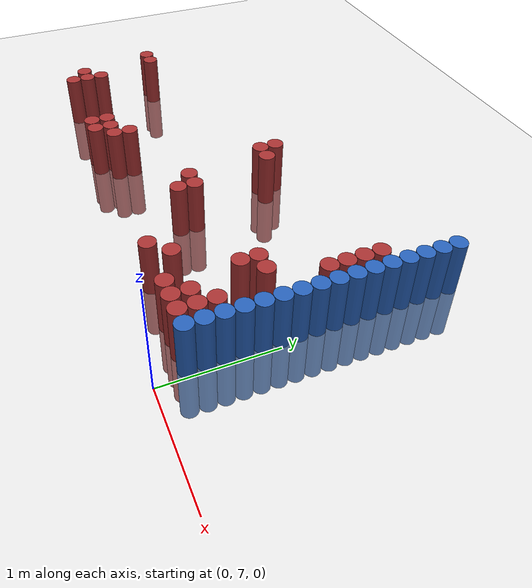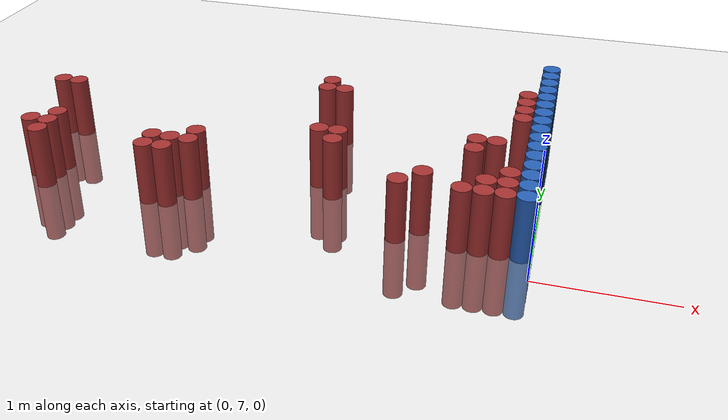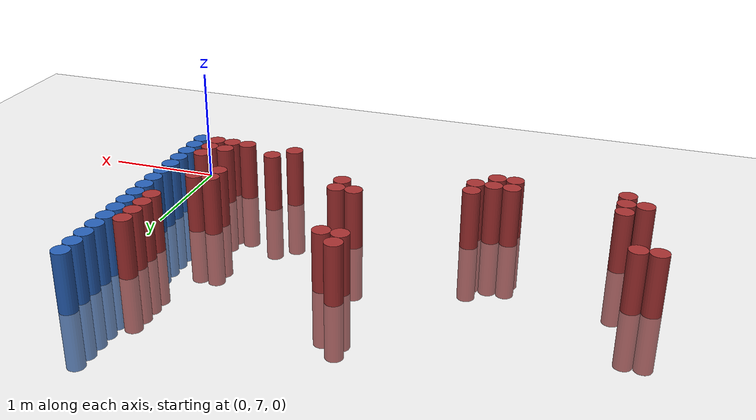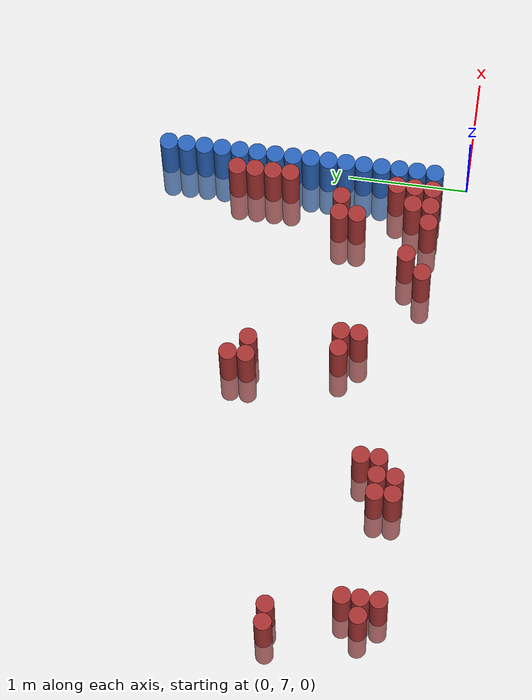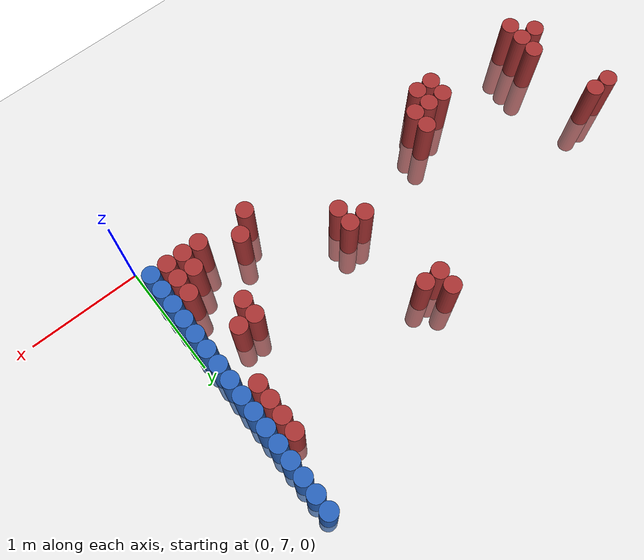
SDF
<sdf version="1.6">
 <world name="default">
  <model name="ground_plane">
   <static>1</static>
   <link name="link">
    <collision name="collision">
     <geometry><plane><normal>0 0 1</normal><size>100 100</size></plane></geometry>
     <surface><friction><ode><mu>100</mu><mu2>50</mu2></ode></friction></surface>
    </collision>
    <visual name="visual">
     <cast_shadows>0</cast_shadows>
     <geometry><plane><normal>0 0 1</normal><size>100 100</size></plane></geometry>
     <material>
      <script><uri>file://media/materials/scripts/gazebo.material</uri><name>Gazebo/Grey</name></script>
     </material>
    </visual>
   </link>
  </model>
  <model name="unit_cylinder_146">
   <static>1</static>
   <pose>-4.125000 8.175000 0.000000 0.000000 0.000000 0.000000</pose>
   <link name="link">
    <inertial>
     <mass>1</mass>
     <inertia><ixx>0.145833</ixx><ixy>0</ixy><ixz>0</ixz><iyy>0.145833</iyy><iyz>0</iyz><izz>0.125</izz></inertia>
    </inertial>
    <collision name="collision">
     <geometry><cylinder><radius>0.075000</radius><length>1</length></cylinder></geometry>
    </collision>
    <visual name="visual">
     <geometry><cylinder><radius>0.075000</radius><length>1</length></cylinder></geometry>
     <material>
      <ambient>0.648000 0.192000 0.192000 1</ambient>
      <diffuse>0.648000 0.192000 0.192000 1</diffuse>
     </material>
     <material>
      <script><name>Gazebo/Grey</name><uri>file://media/materials/scripts/gazebo.material</uri></script>
     </material>
    </visual>
   </link>
  </model>
  <model name="unit_cylinder_151">
   <static>1</static>
   <pose>-3.975000 7.425000 0.000000 0.000000 0.000000 0.000000</pose>
   <link name="link">
    <inertial>
     <mass>1</mass>
     <inertia><ixx>0.145833</ixx><ixy>0</ixy><ixz>0</ixz><iyy>0.145833</iyy><iyz>0</iyz><izz>0.125</izz></inertia>
    </inertial>
    <collision name="collision">
     <geometry><cylinder><radius>0.075000</radius><length>1</length></cylinder></geometry>
    </collision>
    <visual name="visual">
     <geometry><cylinder><radius>0.075000</radius><length>1</length></cylinder></geometry>
     <material>
      <ambient>0.648000 0.192000 0.192000 1</ambient>
      <diffuse>0.648000 0.192000 0.192000 1</diffuse>
     </material>
     <material>
      <script><name>Gazebo/Grey</name><uri>file://media/materials/scripts/gazebo.material</uri></script>
     </material>
    </visual>
   </link>
  </model>
  <model name="unit_cylinder_152">
   <static>1</static>
   <pose>-3.975000 8.175000 0.000000 0.000000 0.000000 0.000000</pose>
   <link name="link">
    <inertial>
     <mass>1</mass>
     <inertia><ixx>0.145833</ixx><ixy>0</ixy><ixz>0</ixz><iyy>0.145833</iyy><iyz>0</iyz><izz>0.125</izz></inertia>
    </inertial>
    <collision name="collision">
     <geometry><cylinder><radius>0.075000</radius><length>1</length></cylinder></geometry>
    </collision>
    <visual name="visual">
     <geometry><cylinder><radius>0.075000</radius><length>1</length></cylinder></geometry>
     <material>
      <ambient>0.648000 0.192000 0.192000 1</ambient>
      <diffuse>0.648000 0.192000 0.192000 1</diffuse>
     </material>
     <material>
      <script><name>Gazebo/Grey</name><uri>file://media/materials/scripts/gazebo.material</uri></script>
     </material>
    </visual>
   </link>
  </model>
  <model name="unit_cylinder_154">
   <static>1</static>
   <pose>-3.825000 7.275000 0.000000 0.000000 0.000000 0.000000</pose>
   <link name="link">
    <inertial>
     <mass>1</mass>
     <inertia><ixx>0.145833</ixx><ixy>0</ixy><ixz>0</ixz><iyy>0.145833</iyy><iyz>0</iyz><izz>0.125</izz></inertia>
    </inertial>
    <collision name="collision">
     <geometry><cylinder><radius>0.075000</radius><length>1</length></cylinder></geometry>
    </collision>
    <visual name="visual">
     <geometry><cylinder><radius>0.075000</radius><length>1</length></cylinder></geometry>
     <material>
      <ambient>0.648000 0.192000 0.192000 1</ambient>
      <diffuse>0.648000 0.192000 0.192000 1</diffuse>
     </material>
     <material>
      <script><name>Gazebo/Grey</name><uri>file://media/materials/scripts/gazebo.material</uri></script>
     </material>
    </visual>
   </link>
  </model>
  <model name="unit_cylinder_155">
   <static>1</static>
   <pose>-3.825000 7.425000 0.000000 0.000000 0.000000 0.000000</pose>
   <link name="link">
    <inertial>
     <mass>1</mass>
     <inertia><ixx>0.145833</ixx><ixy>0</ixy><ixz>0</ixz><iyy>0.145833</iyy><iyz>0</iyz><izz>0.125</izz></inertia>
    </inertial>
    <collision name="collision">
     <geometry><cylinder><radius>0.075000</radius><length>1</length></cylinder></geometry>
    </collision>
    <visual name="visual">
     <geometry><cylinder><radius>0.075000</radius><length>1</length></cylinder></geometry>
     <material>
      <ambient>0.648000 0.192000 0.192000 1</ambient>
      <diffuse>0.648000 0.192000 0.192000 1</diffuse>
     </material>
     <material>
      <script><name>Gazebo/Grey</name><uri>file://media/materials/scripts/gazebo.material</uri></script>
     </material>
    </visual>
   </link>
  </model>
  <model name="unit_cylinder_156">
   <static>1</static>
   <pose>-3.825000 7.575000 0.000000 0.000000 0.000000 0.000000</pose>
   <link name="link">
    <inertial>
     <mass>1</mass>
     <inertia><ixx>0.145833</ixx><ixy>0</ixy><ixz>0</ixz><iyy>0.145833</iyy><iyz>0</iyz><izz>0.125</izz></inertia>
    </inertial>
    <collision name="collision">
     <geometry><cylinder><radius>0.075000</radius><length>1</length></cylinder></geometry>
    </collision>
    <visual name="visual">
     <geometry><cylinder><radius>0.075000</radius><length>1</length></cylinder></geometry>
     <material>
      <ambient>0.648000 0.192000 0.192000 1</ambient>
      <diffuse>0.648000 0.192000 0.192000 1</diffuse>
     </material>
     <material>
      <script><name>Gazebo/Grey</name><uri>file://media/materials/scripts/gazebo.material</uri></script>
     </material>
    </visual>
   </link>
  </model>
  <model name="unit_cylinder_157">
   <static>1</static>
   <pose>-2.925000 7.275000 0.000000 0.000000 0.000000 0.000000</pose>
   <link name="link">
    <inertial>
     <mass>1</mass>
     <inertia><ixx>0.145833</ixx><ixy>0</ixy><ixz>0</ixz><iyy>0.145833</iyy><iyz>0</iyz><izz>0.125</izz></inertia>
    </inertial>
    <collision name="collision">
     <geometry><cylinder><radius>0.075000</radius><length>1</length></cylinder></geometry>
    </collision>
    <visual name="visual">
     <geometry><cylinder><radius>0.075000</radius><length>1</length></cylinder></geometry>
     <material>
      <ambient>0.648000 0.192000 0.192000 1</ambient>
      <diffuse>0.648000 0.192000 0.192000 1</diffuse>
     </material>
     <material>
      <script><name>Gazebo/Grey</name><uri>file://media/materials/scripts/gazebo.material</uri></script>
     </material>
    </visual>
   </link>
  </model>
  <model name="unit_cylinder_158">
   <static>1</static>
   <pose>-2.925000 7.425000 0.000000 0.000000 0.000000 0.000000</pose>
   <link name="link">
    <inertial>
     <mass>1</mass>
     <inertia><ixx>0.145833</ixx><ixy>0</ixy><ixz>0</ixz><iyy>0.145833</iyy><iyz>0</iyz><izz>0.125</izz></inertia>
    </inertial>
    <collision name="collision">
     <geometry><cylinder><radius>0.075000</radius><length>1</length></cylinder></geometry>
    </collision>
    <visual name="visual">
     <geometry><cylinder><radius>0.075000</radius><length>1</length></cylinder></geometry>
     <material>
      <ambient>0.648000 0.192000 0.192000 1</ambient>
      <diffuse>0.648000 0.192000 0.192000 1</diffuse>
     </material>
     <material>
      <script><name>Gazebo/Grey</name><uri>file://media/materials/scripts/gazebo.material</uri></script>
     </material>
    </visual>
   </link>
  </model>
  <model name="unit_cylinder_164">
   <static>1</static>
   <pose>-2.775000 7.275000 0.000000 0.000000 0.000000 0.000000</pose>
   <link name="link">
    <inertial>
     <mass>1</mass>
     <inertia><ixx>0.145833</ixx><ixy>0</ixy><ixz>0</ixz><iyy>0.145833</iyy><iyz>0</iyz><izz>0.125</izz></inertia>
    </inertial>
    <collision name="collision">
     <geometry><cylinder><radius>0.075000</radius><length>1</length></cylinder></geometry>
    </collision>
    <visual name="visual">
     <geometry><cylinder><radius>0.075000</radius><length>1</length></cylinder></geometry>
     <material>
      <ambient>0.648000 0.192000 0.192000 1</ambient>
      <diffuse>0.648000 0.192000 0.192000 1</diffuse>
     </material>
     <material>
      <script><name>Gazebo/Grey</name><uri>file://media/materials/scripts/gazebo.material</uri></script>
     </material>
    </visual>
   </link>
  </model>
  <model name="unit_cylinder_165">
   <static>1</static>
   <pose>-2.775000 7.425000 0.000000 0.000000 0.000000 0.000000</pose>
   <link name="link">
    <inertial>
     <mass>1</mass>
     <inertia><ixx>0.145833</ixx><ixy>0</ixy><ixz>0</ixz><iyy>0.145833</iyy><iyz>0</iyz><izz>0.125</izz></inertia>
    </inertial>
    <collision name="collision">
     <geometry><cylinder><radius>0.075000</radius><length>1</length></cylinder></geometry>
    </collision>
    <visual name="visual">
     <geometry><cylinder><radius>0.075000</radius><length>1</length></cylinder></geometry>
     <material>
      <ambient>0.648000 0.192000 0.192000 1</ambient>
      <diffuse>0.648000 0.192000 0.192000 1</diffuse>
     </material>
     <material>
      <script><name>Gazebo/Grey</name><uri>file://media/materials/scripts/gazebo.material</uri></script>
     </material>
    </visual>
   </link>
  </model>
  <model name="unit_cylinder_170">
   <static>1</static>
   <pose>-2.625000 7.425000 0.000000 0.000000 0.000000 0.000000</pose>
   <link name="link">
    <inertial>
     <mass>1</mass>
     <inertia><ixx>0.145833</ixx><ixy>0</ixy><ixz>0</ixz><iyy>0.145833</iyy><iyz>0</iyz><izz>0.125</izz></inertia>
    </inertial>
    <collision name="collision">
     <geometry><cylinder><radius>0.075000</radius><length>1</length></cylinder></geometry>
    </collision>
    <visual name="visual">
     <geometry><cylinder><radius>0.075000</radius><length>1</length></cylinder></geometry>
     <material>
      <ambient>0.648000 0.192000 0.192000 1</ambient>
      <diffuse>0.648000 0.192000 0.192000 1</diffuse>
     </material>
     <material>
      <script><name>Gazebo/Grey</name><uri>file://media/materials/scripts/gazebo.material</uri></script>
     </material>
    </visual>
   </link>
  </model>
  <model name="unit_cylinder_171">
   <static>1</static>
   <pose>-2.625000 7.575000 0.000000 0.000000 0.000000 0.000000</pose>
   <link name="link">
    <inertial>
     <mass>1</mass>
     <inertia><ixx>0.145833</ixx><ixy>0</ixy><ixz>0</ixz><iyy>0.145833</iyy><iyz>0</iyz><izz>0.125</izz></inertia>
    </inertial>
    <collision name="collision">
     <geometry><cylinder><radius>0.075000</radius><length>1</length></cylinder></geometry>
    </collision>
    <visual name="visual">
     <geometry><cylinder><radius>0.075000</radius><length>1</length></cylinder></geometry>
     <material>
      <ambient>0.648000 0.192000 0.192000 1</ambient>
      <diffuse>0.648000 0.192000 0.192000 1</diffuse>
     </material>
     <material>
      <script><name>Gazebo/Grey</name><uri>file://media/materials/scripts/gazebo.material</uri></script>
     </material>
    </visual>
   </link>
  </model>
  <model name="unit_cylinder_175">
   <static>1</static>
   <pose>-1.875000 8.625000 0.000000 0.000000 0.000000 0.000000</pose>
   <link name="link">
    <inertial>
     <mass>1</mass>
     <inertia><ixx>0.145833</ixx><ixy>0</ixy><ixz>0</ixz><iyy>0.145833</iyy><iyz>0</iyz><izz>0.125</izz></inertia>
    </inertial>
    <collision name="collision">
     <geometry><cylinder><radius>0.075000</radius><length>1</length></cylinder></geometry>
    </collision>
    <visual name="visual">
     <geometry><cylinder><radius>0.075000</radius><length>1</length></cylinder></geometry>
     <material>
      <ambient>0.648000 0.192000 0.192000 1</ambient>
      <diffuse>0.648000 0.192000 0.192000 1</diffuse>
     </material>
     <material>
      <script><name>Gazebo/Grey</name><uri>file://media/materials/scripts/gazebo.material</uri></script>
     </material>
    </visual>
   </link>
  </model>
  <model name="unit_cylinder_176">
   <static>1</static>
   <pose>-1.875000 8.775000 0.000000 0.000000 0.000000 0.000000</pose>
   <link name="link">
    <inertial>
     <mass>1</mass>
     <inertia><ixx>0.145833</ixx><ixy>0</ixy><ixz>0</ixz><iyy>0.145833</iyy><iyz>0</iyz><izz>0.125</izz></inertia>
    </inertial>
    <collision name="collision">
     <geometry><cylinder><radius>0.075000</radius><length>1</length></cylinder></geometry>
    </collision>
    <visual name="visual">
     <geometry><cylinder><radius>0.075000</radius><length>1</length></cylinder></geometry>
     <material>
      <ambient>0.648000 0.192000 0.192000 1</ambient>
      <diffuse>0.648000 0.192000 0.192000 1</diffuse>
     </material>
     <material>
      <script><name>Gazebo/Grey</name><uri>file://media/materials/scripts/gazebo.material</uri></script>
     </material>
    </visual>
   </link>
  </model>
  <model name="unit_cylinder_179">
   <static>1</static>
   <pose>-1.725000 7.875000 0.000000 0.000000 0.000000 0.000000</pose>
   <link name="link">
    <inertial>
     <mass>1</mass>
     <inertia><ixx>0.145833</ixx><ixy>0</ixy><ixz>0</ixz><iyy>0.145833</iyy><iyz>0</iyz><izz>0.125</izz></inertia>
    </inertial>
    <collision name="collision">
     <geometry><cylinder><radius>0.075000</radius><length>1</length></cylinder></geometry>
    </collision>
    <visual name="visual">
     <geometry><cylinder><radius>0.075000</radius><length>1</length></cylinder></geometry>
     <material>
      <ambient>0.648000 0.192000 0.192000 1</ambient>
      <diffuse>0.648000 0.192000 0.192000 1</diffuse>
     </material>
     <material>
      <script><name>Gazebo/Grey</name><uri>file://media/materials/scripts/gazebo.material</uri></script>
     </material>
    </visual>
   </link>
  </model>
  <model name="unit_cylinder_180">
   <static>1</static>
   <pose>-1.725000 8.625000 0.000000 0.000000 0.000000 0.000000</pose>
   <link name="link">
    <inertial>
     <mass>1</mass>
     <inertia><ixx>0.145833</ixx><ixy>0</ixy><ixz>0</ixz><iyy>0.145833</iyy><iyz>0</iyz><izz>0.125</izz></inertia>
    </inertial>
    <collision name="collision">
     <geometry><cylinder><radius>0.075000</radius><length>1</length></cylinder></geometry>
    </collision>
    <visual name="visual">
     <geometry><cylinder><radius>0.075000</radius><length>1</length></cylinder></geometry>
     <material>
      <ambient>0.648000 0.192000 0.192000 1</ambient>
      <diffuse>0.648000 0.192000 0.192000 1</diffuse>
     </material>
     <material>
      <script><name>Gazebo/Grey</name><uri>file://media/materials/scripts/gazebo.material</uri></script>
     </material>
    </visual>
   </link>
  </model>
  <model name="unit_cylinder_183">
   <static>1</static>
   <pose>-1.575000 7.725000 0.000000 0.000000 0.000000 0.000000</pose>
   <link name="link">
    <inertial>
     <mass>1</mass>
     <inertia><ixx>0.145833</ixx><ixy>0</ixy><ixz>0</ixz><iyy>0.145833</iyy><iyz>0</iyz><izz>0.125</izz></inertia>
    </inertial>
    <collision name="collision">
     <geometry><cylinder><radius>0.075000</radius><length>1</length></cylinder></geometry>
    </collision>
    <visual name="visual">
     <geometry><cylinder><radius>0.075000</radius><length>1</length></cylinder></geometry>
     <material>
      <ambient>0.648000 0.192000 0.192000 1</ambient>
      <diffuse>0.648000 0.192000 0.192000 1</diffuse>
     </material>
     <material>
      <script><name>Gazebo/Grey</name><uri>file://media/materials/scripts/gazebo.material</uri></script>
     </material>
    </visual>
   </link>
  </model>
  <model name="unit_cylinder_184">
   <static>1</static>
   <pose>-1.575000 7.875000 0.000000 0.000000 0.000000 0.000000</pose>
   <link name="link">
    <inertial>
     <mass>1</mass>
     <inertia><ixx>0.145833</ixx><ixy>0</ixy><ixz>0</ixz><iyy>0.145833</iyy><iyz>0</iyz><izz>0.125</izz></inertia>
    </inertial>
    <collision name="collision">
     <geometry><cylinder><radius>0.075000</radius><length>1</length></cylinder></geometry>
    </collision>
    <visual name="visual">
     <geometry><cylinder><radius>0.075000</radius><length>1</length></cylinder></geometry>
     <material>
      <ambient>0.648000 0.192000 0.192000 1</ambient>
      <diffuse>0.648000 0.192000 0.192000 1</diffuse>
     </material>
     <material>
      <script><name>Gazebo/Grey</name><uri>file://media/materials/scripts/gazebo.material</uri></script>
     </material>
    </visual>
   </link>
  </model>
  <model name="unit_cylinder_191">
   <static>1</static>
   <pose>-0.975000 7.275000 0.000000 0.000000 0.000000 0.000000</pose>
   <link name="link">
    <inertial>
     <mass>1</mass>
     <inertia><ixx>0.145833</ixx><ixy>0</ixy><ixz>0</ixz><iyy>0.145833</iyy><iyz>0</iyz><izz>0.125</izz></inertia>
    </inertial>
    <collision name="collision">
     <geometry><cylinder><radius>0.075000</radius><length>1</length></cylinder></geometry>
    </collision>
    <visual name="visual">
     <geometry><cylinder><radius>0.075000</radius><length>1</length></cylinder></geometry>
     <material>
      <ambient>0.648000 0.192000 0.192000 1</ambient>
      <diffuse>0.648000 0.192000 0.192000 1</diffuse>
     </material>
     <material>
      <script><name>Gazebo/Grey</name><uri>file://media/materials/scripts/gazebo.material</uri></script>
     </material>
    </visual>
   </link>
  </model>
  <model name="unit_cylinder_194">
   <static>1</static>
   <pose>-0.825000 7.425000 0.000000 0.000000 0.000000 0.000000</pose>
   <link name="link">
    <inertial>
     <mass>1</mass>
     <inertia><ixx>0.145833</ixx><ixy>0</ixy><ixz>0</ixz><iyy>0.145833</iyy><iyz>0</iyz><izz>0.125</izz></inertia>
    </inertial>
    <collision name="collision">
     <geometry><cylinder><radius>0.075000</radius><length>1</length></cylinder></geometry>
    </collision>
    <visual name="visual">
     <geometry><cylinder><radius>0.075000</radius><length>1</length></cylinder></geometry>
     <material>
      <ambient>0.648000 0.192000 0.192000 1</ambient>
      <diffuse>0.648000 0.192000 0.192000 1</diffuse>
     </material>
     <material>
      <script><name>Gazebo/Grey</name><uri>file://media/materials/scripts/gazebo.material</uri></script>
     </material>
    </visual>
   </link>
  </model>
  <model name="unit_cylinder_195">
   <static>1</static>
   <pose>-0.525000 7.275000 0.000000 0.000000 0.000000 0.000000</pose>
   <link name="link">
    <inertial>
     <mass>1</mass>
     <inertia><ixx>0.145833</ixx><ixy>0</ixy><ixz>0</ixz><iyy>0.145833</iyy><iyz>0</iyz><izz>0.125</izz></inertia>
    </inertial>
    <collision name="collision">
     <geometry><cylinder><radius>0.075000</radius><length>1</length></cylinder></geometry>
    </collision>
    <visual name="visual">
     <geometry><cylinder><radius>0.075000</radius><length>1</length></cylinder></geometry>
     <material>
      <ambient>0.648000 0.192000 0.192000 1</ambient>
      <diffuse>0.648000 0.192000 0.192000 1</diffuse>
     </material>
     <material>
      <script><name>Gazebo/Grey</name><uri>file://media/materials/scripts/gazebo.material</uri></script>
     </material>
    </visual>
   </link>
  </model>
  <model name="unit_cylinder_196">
   <static>1</static>
   <pose>-0.525000 7.875000 0.000000 0.000000 0.000000 0.000000</pose>
   <link name="link">
    <inertial>
     <mass>1</mass>
     <inertia><ixx>0.145833</ixx><ixy>0</ixy><ixz>0</ixz><iyy>0.145833</iyy><iyz>0</iyz><izz>0.125</izz></inertia>
    </inertial>
    <collision name="collision">
     <geometry><cylinder><radius>0.075000</radius><length>1</length></cylinder></geometry>
    </collision>
    <visual name="visual">
     <geometry><cylinder><radius>0.075000</radius><length>1</length></cylinder></geometry>
     <material>
      <ambient>0.648000 0.192000 0.192000 1</ambient>
      <diffuse>0.648000 0.192000 0.192000 1</diffuse>
     </material>
     <material>
      <script><name>Gazebo/Grey</name><uri>file://media/materials/scripts/gazebo.material</uri></script>
     </material>
    </visual>
   </link>
  </model>
  <model name="unit_cylinder_197">
   <static>1</static>
   <pose>-0.525000 8.025000 0.000000 0.000000 0.000000 0.000000</pose>
   <link name="link">
    <inertial>
     <mass>1</mass>
     <inertia><ixx>0.145833</ixx><ixy>0</ixy><ixz>0</ixz><iyy>0.145833</iyy><iyz>0</iyz><izz>0.125</izz></inertia>
    </inertial>
    <collision name="collision">
     <geometry><cylinder><radius>0.075000</radius><length>1</length></cylinder></geometry>
    </collision>
    <visual name="visual">
     <geometry><cylinder><radius>0.075000</radius><length>1</length></cylinder></geometry>
     <material>
      <ambient>0.648000 0.192000 0.192000 1</ambient>
      <diffuse>0.648000 0.192000 0.192000 1</diffuse>
     </material>
     <material>
      <script><name>Gazebo/Grey</name><uri>file://media/materials/scripts/gazebo.material</uri></script>
     </material>
    </visual>
   </link>
  </model>
  <model name="unit_cylinder_199">
   <static>1</static>
   <pose>-0.375000 7.275000 0.000000 0.000000 0.000000 0.000000</pose>
   <link name="link">
    <inertial>
     <mass>1</mass>
     <inertia><ixx>0.145833</ixx><ixy>0</ixy><ixz>0</ixz><iyy>0.145833</iyy><iyz>0</iyz><izz>0.125</izz></inertia>
    </inertial>
    <collision name="collision">
     <geometry><cylinder><radius>0.075000</radius><length>1</length></cylinder></geometry>
    </collision>
    <visual name="visual">
     <geometry><cylinder><radius>0.075000</radius><length>1</length></cylinder></geometry>
     <material>
      <ambient>0.648000 0.192000 0.192000 1</ambient>
      <diffuse>0.648000 0.192000 0.192000 1</diffuse>
     </material>
     <material>
      <script><name>Gazebo/Grey</name><uri>file://media/materials/scripts/gazebo.material</uri></script>
     </material>
    </visual>
   </link>
  </model>
  <model name="unit_cylinder_200">
   <static>1</static>
   <pose>-0.375000 7.425000 0.000000 0.000000 0.000000 0.000000</pose>
   <link name="link">
    <inertial>
     <mass>1</mass>
     <inertia><ixx>0.145833</ixx><ixy>0</ixy><ixz>0</ixz><iyy>0.145833</iyy><iyz>0</iyz><izz>0.125</izz></inertia>
    </inertial>
    <collision name="collision">
     <geometry><cylinder><radius>0.075000</radius><length>1</length></cylinder></geometry>
    </collision>
    <visual name="visual">
     <geometry><cylinder><radius>0.075000</radius><length>1</length></cylinder></geometry>
     <material>
      <ambient>0.648000 0.192000 0.192000 1</ambient>
      <diffuse>0.648000 0.192000 0.192000 1</diffuse>
     </material>
     <material>
      <script><name>Gazebo/Grey</name><uri>file://media/materials/scripts/gazebo.material</uri></script>
     </material>
    </visual>
   </link>
  </model>
  <model name="unit_cylinder_201">
   <static>1</static>
   <pose>-0.375000 8.025000 0.000000 0.000000 0.000000 0.000000</pose>
   <link name="link">
    <inertial>
     <mass>1</mass>
     <inertia><ixx>0.145833</ixx><ixy>0</ixy><ixz>0</ixz><iyy>0.145833</iyy><iyz>0</iyz><izz>0.125</izz></inertia>
    </inertial>
    <collision name="collision">
     <geometry><cylinder><radius>0.075000</radius><length>1</length></cylinder></geometry>
    </collision>
    <visual name="visual">
     <geometry><cylinder><radius>0.075000</radius><length>1</length></cylinder></geometry>
     <material>
      <ambient>0.648000 0.192000 0.192000 1</ambient>
      <diffuse>0.648000 0.192000 0.192000 1</diffuse>
     </material>
     <material>
      <script><name>Gazebo/Grey</name><uri>file://media/materials/scripts/gazebo.material</uri></script>
     </material>
    </visual>
   </link>
  </model>
  <model name="unit_cylinder_208">
   <static>1</static>
   <pose>-0.225000 7.275000 0.000000 0.000000 0.000000 0.000000</pose>
   <link name="link">
    <inertial>
     <mass>1</mass>
     <inertia><ixx>0.145833</ixx><ixy>0</ixy><ixz>0</ixz><iyy>0.145833</iyy><iyz>0</iyz><izz>0.125</izz></inertia>
    </inertial>
    <collision name="collision">
     <geometry><cylinder><radius>0.075000</radius><length>1</length></cylinder></geometry>
    </collision>
    <visual name="visual">
     <geometry><cylinder><radius>0.075000</radius><length>1</length></cylinder></geometry>
     <material>
      <ambient>0.648000 0.192000 0.192000 1</ambient>
      <diffuse>0.648000 0.192000 0.192000 1</diffuse>
     </material>
     <material>
      <script><name>Gazebo/Grey</name><uri>file://media/materials/scripts/gazebo.material</uri></script>
     </material>
    </visual>
   </link>
  </model>
  <model name="unit_cylinder_209">
   <static>1</static>
   <pose>-0.225000 7.425000 0.000000 0.000000 0.000000 0.000000</pose>
   <link name="link">
    <inertial>
     <mass>1</mass>
     <inertia><ixx>0.145833</ixx><ixy>0</ixy><ixz>0</ixz><iyy>0.145833</iyy><iyz>0</iyz><izz>0.125</izz></inertia>
    </inertial>
    <collision name="collision">
     <geometry><cylinder><radius>0.075000</radius><length>1</length></cylinder></geometry>
    </collision>
    <visual name="visual">
     <geometry><cylinder><radius>0.075000</radius><length>1</length></cylinder></geometry>
     <material>
      <ambient>0.648000 0.192000 0.192000 1</ambient>
      <diffuse>0.648000 0.192000 0.192000 1</diffuse>
     </material>
     <material>
      <script><name>Gazebo/Grey</name><uri>file://media/materials/scripts/gazebo.material</uri></script>
     </material>
    </visual>
   </link>
  </model>
  <model name="unit_cylinder_210">
   <static>1</static>
   <pose>-0.225000 7.575000 0.000000 0.000000 0.000000 0.000000</pose>
   <link name="link">
    <inertial>
     <mass>1</mass>
     <inertia><ixx>0.145833</ixx><ixy>0</ixy><ixz>0</ixz><iyy>0.145833</iyy><iyz>0</iyz><izz>0.125</izz></inertia>
    </inertial>
    <collision name="collision">
     <geometry><cylinder><radius>0.075000</radius><length>1</length></cylinder></geometry>
    </collision>
    <visual name="visual">
     <geometry><cylinder><radius>0.075000</radius><length>1</length></cylinder></geometry>
     <material>
      <ambient>0.648000 0.192000 0.192000 1</ambient>
      <diffuse>0.648000 0.192000 0.192000 1</diffuse>
     </material>
     <material>
      <script><name>Gazebo/Grey</name><uri>file://media/materials/scripts/gazebo.material</uri></script>
     </material>
    </visual>
   </link>
  </model>
  <model name="unit_cylinder_211">
   <static>1</static>
   <pose>-0.225000 8.475000 0.000000 0.000000 0.000000 0.000000</pose>
   <link name="link">
    <inertial>
     <mass>1</mass>
     <inertia><ixx>0.145833</ixx><ixy>0</ixy><ixz>0</ixz><iyy>0.145833</iyy><iyz>0</iyz><izz>0.125</izz></inertia>
    </inertial>
    <collision name="collision">
     <geometry><cylinder><radius>0.075000</radius><length>1</length></cylinder></geometry>
    </collision>
    <visual name="visual">
     <geometry><cylinder><radius>0.075000</radius><length>1</length></cylinder></geometry>
     <material>
      <ambient>0.648000 0.192000 0.192000 1</ambient>
      <diffuse>0.648000 0.192000 0.192000 1</diffuse>
     </material>
     <material>
      <script><name>Gazebo/Grey</name><uri>file://media/materials/scripts/gazebo.material</uri></script>
     </material>
    </visual>
   </link>
  </model>
  <model name="unit_cylinder_212">
   <static>1</static>
   <pose>-0.225000 8.625000 0.000000 0.000000 0.000000 0.000000</pose>
   <link name="link">
    <inertial>
     <mass>1</mass>
     <inertia><ixx>0.145833</ixx><ixy>0</ixy><ixz>0</ixz><iyy>0.145833</iyy><iyz>0</iyz><izz>0.125</izz></inertia>
    </inertial>
    <collision name="collision">
     <geometry><cylinder><radius>0.075000</radius><length>1</length></cylinder></geometry>
    </collision>
    <visual name="visual">
     <geometry><cylinder><radius>0.075000</radius><length>1</length></cylinder></geometry>
     <material>
      <ambient>0.648000 0.192000 0.192000 1</ambient>
      <diffuse>0.648000 0.192000 0.192000 1</diffuse>
     </material>
     <material>
      <script><name>Gazebo/Grey</name><uri>file://media/materials/scripts/gazebo.material</uri></script>
     </material>
    </visual>
   </link>
  </model>
  <model name="unit_cylinder_213">
   <static>1</static>
   <pose>-0.225000 8.775000 0.000000 0.000000 0.000000 0.000000</pose>
   <link name="link">
    <inertial>
     <mass>1</mass>
     <inertia><ixx>0.145833</ixx><ixy>0</ixy><ixz>0</ixz><iyy>0.145833</iyy><iyz>0</iyz><izz>0.125</izz></inertia>
    </inertial>
    <collision name="collision">
     <geometry><cylinder><radius>0.075000</radius><length>1</length></cylinder></geometry>
    </collision>
    <visual name="visual">
     <geometry><cylinder><radius>0.075000</radius><length>1</length></cylinder></geometry>
     <material>
      <ambient>0.648000 0.192000 0.192000 1</ambient>
      <diffuse>0.648000 0.192000 0.192000 1</diffuse>
     </material>
     <material>
      <script><name>Gazebo/Grey</name><uri>file://media/materials/scripts/gazebo.material</uri></script>
     </material>
    </visual>
   </link>
  </model>
  <model name="unit_cylinder_214">
   <static>1</static>
   <pose>-0.225000 8.925000 0.000000 0.000000 0.000000 0.000000</pose>
   <link name="link">
    <inertial>
     <mass>1</mass>
     <inertia><ixx>0.145833</ixx><ixy>0</ixy><ixz>0</ixz><iyy>0.145833</iyy><iyz>0</iyz><izz>0.125</izz></inertia>
    </inertial>
    <collision name="collision">
     <geometry><cylinder><radius>0.075000</radius><length>1</length></cylinder></geometry>
    </collision>
    <visual name="visual">
     <geometry><cylinder><radius>0.075000</radius><length>1</length></cylinder></geometry>
     <material>
      <ambient>0.648000 0.192000 0.192000 1</ambient>
      <diffuse>0.648000 0.192000 0.192000 1</diffuse>
     </material>
     <material>
      <script><name>Gazebo/Grey</name><uri>file://media/materials/scripts/gazebo.material</uri></script>
     </material>
    </visual>
   </link>
  </model>
  <model name="unit_cylinder_229">
   <static>1</static>
   <pose>-0.075000 7.275000 0.000000 0.000000 0.000000 0.000000</pose>
   <link name="link">
    <inertial>
     <mass>1</mass>
     <inertia><ixx>0.145833</ixx><ixy>0</ixy><ixz>0</ixz><iyy>0.145833</iyy><iyz>0</iyz><izz>0.125</izz></inertia>
    </inertial>
    <collision name="collision">
     <geometry><cylinder><radius>0.075000</radius><length>1</length></cylinder></geometry>
    </collision>
    <visual name="visual">
     <geometry><cylinder><radius>0.075000</radius><length>1</length></cylinder></geometry>
     <material>
      <ambient>0.152000 0.379000 0.720000 1</ambient>
      <diffuse>0.152000 0.379000 0.720000 1</diffuse>
     </material>
     <material>
      <script><name>Gazebo/Grey</name><uri>file://media/materials/scripts/gazebo.material</uri></script>
     </material>
    </visual>
   </link>
  </model>
  <model name="unit_cylinder_230">
   <static>1</static>
   <pose>-0.075000 7.425000 0.000000 0.000000 0.000000 0.000000</pose>
   <link name="link">
    <inertial>
     <mass>1</mass>
     <inertia><ixx>0.145833</ixx><ixy>0</ixy><ixz>0</ixz><iyy>0.145833</iyy><iyz>0</iyz><izz>0.125</izz></inertia>
    </inertial>
    <collision name="collision">
     <geometry><cylinder><radius>0.075000</radius><length>1</length></cylinder></geometry>
    </collision>
    <visual name="visual">
     <geometry><cylinder><radius>0.075000</radius><length>1</length></cylinder></geometry>
     <material>
      <ambient>0.152000 0.379000 0.720000 1</ambient>
      <diffuse>0.152000 0.379000 0.720000 1</diffuse>
     </material>
     <material>
      <script><name>Gazebo/Grey</name><uri>file://media/materials/scripts/gazebo.material</uri></script>
     </material>
    </visual>
   </link>
  </model>
  <model name="unit_cylinder_231">
   <static>1</static>
   <pose>-0.075000 7.575000 0.000000 0.000000 0.000000 0.000000</pose>
   <link name="link">
    <inertial>
     <mass>1</mass>
     <inertia><ixx>0.145833</ixx><ixy>0</ixy><ixz>0</ixz><iyy>0.145833</iyy><iyz>0</iyz><izz>0.125</izz></inertia>
    </inertial>
    <collision name="collision">
     <geometry><cylinder><radius>0.075000</radius><length>1</length></cylinder></geometry>
    </collision>
    <visual name="visual">
     <geometry><cylinder><radius>0.075000</radius><length>1</length></cylinder></geometry>
     <material>
      <ambient>0.152000 0.379000 0.720000 1</ambient>
      <diffuse>0.152000 0.379000 0.720000 1</diffuse>
     </material>
     <material>
      <script><name>Gazebo/Grey</name><uri>file://media/materials/scripts/gazebo.material</uri></script>
     </material>
    </visual>
   </link>
  </model>
  <model name="unit_cylinder_232">
   <static>1</static>
   <pose>-0.075000 7.725000 0.000000 0.000000 0.000000 0.000000</pose>
   <link name="link">
    <inertial>
     <mass>1</mass>
     <inertia><ixx>0.145833</ixx><ixy>0</ixy><ixz>0</ixz><iyy>0.145833</iyy><iyz>0</iyz><izz>0.125</izz></inertia>
    </inertial>
    <collision name="collision">
     <geometry><cylinder><radius>0.075000</radius><length>1</length></cylinder></geometry>
    </collision>
    <visual name="visual">
     <geometry><cylinder><radius>0.075000</radius><length>1</length></cylinder></geometry>
     <material>
      <ambient>0.152000 0.379000 0.720000 1</ambient>
      <diffuse>0.152000 0.379000 0.720000 1</diffuse>
     </material>
     <material>
      <script><name>Gazebo/Grey</name><uri>file://media/materials/scripts/gazebo.material</uri></script>
     </material>
    </visual>
   </link>
  </model>
  <model name="unit_cylinder_233">
   <static>1</static>
   <pose>-0.075000 7.875000 0.000000 0.000000 0.000000 0.000000</pose>
   <link name="link">
    <inertial>
     <mass>1</mass>
     <inertia><ixx>0.145833</ixx><ixy>0</ixy><ixz>0</ixz><iyy>0.145833</iyy><iyz>0</iyz><izz>0.125</izz></inertia>
    </inertial>
    <collision name="collision">
     <geometry><cylinder><radius>0.075000</radius><length>1</length></cylinder></geometry>
    </collision>
    <visual name="visual">
     <geometry><cylinder><radius>0.075000</radius><length>1</length></cylinder></geometry>
     <material>
      <ambient>0.152000 0.379000 0.720000 1</ambient>
      <diffuse>0.152000 0.379000 0.720000 1</diffuse>
     </material>
     <material>
      <script><name>Gazebo/Grey</name><uri>file://media/materials/scripts/gazebo.material</uri></script>
     </material>
    </visual>
   </link>
  </model>
  <model name="unit_cylinder_234">
   <static>1</static>
   <pose>-0.075000 8.025000 0.000000 0.000000 0.000000 0.000000</pose>
   <link name="link">
    <inertial>
     <mass>1</mass>
     <inertia><ixx>0.145833</ixx><ixy>0</ixy><ixz>0</ixz><iyy>0.145833</iyy><iyz>0</iyz><izz>0.125</izz></inertia>
    </inertial>
    <collision name="collision">
     <geometry><cylinder><radius>0.075000</radius><length>1</length></cylinder></geometry>
    </collision>
    <visual name="visual">
     <geometry><cylinder><radius>0.075000</radius><length>1</length></cylinder></geometry>
     <material>
      <ambient>0.152000 0.379000 0.720000 1</ambient>
      <diffuse>0.152000 0.379000 0.720000 1</diffuse>
     </material>
     <material>
      <script><name>Gazebo/Grey</name><uri>file://media/materials/scripts/gazebo.material</uri></script>
     </material>
    </visual>
   </link>
  </model>
  <model name="unit_cylinder_235">
   <static>1</static>
   <pose>-0.075000 8.175000 0.000000 0.000000 0.000000 0.000000</pose>
   <link name="link">
    <inertial>
     <mass>1</mass>
     <inertia><ixx>0.145833</ixx><ixy>0</ixy><ixz>0</ixz><iyy>0.145833</iyy><iyz>0</iyz><izz>0.125</izz></inertia>
    </inertial>
    <collision name="collision">
     <geometry><cylinder><radius>0.075000</radius><length>1</length></cylinder></geometry>
    </collision>
    <visual name="visual">
     <geometry><cylinder><radius>0.075000</radius><length>1</length></cylinder></geometry>
     <material>
      <ambient>0.152000 0.379000 0.720000 1</ambient>
      <diffuse>0.152000 0.379000 0.720000 1</diffuse>
     </material>
     <material>
      <script><name>Gazebo/Grey</name><uri>file://media/materials/scripts/gazebo.material</uri></script>
     </material>
    </visual>
   </link>
  </model>
  <model name="unit_cylinder_236">
   <static>1</static>
   <pose>-0.075000 8.325000 0.000000 0.000000 0.000000 0.000000</pose>
   <link name="link">
    <inertial>
     <mass>1</mass>
     <inertia><ixx>0.145833</ixx><ixy>0</ixy><ixz>0</ixz><iyy>0.145833</iyy><iyz>0</iyz><izz>0.125</izz></inertia>
    </inertial>
    <collision name="collision">
     <geometry><cylinder><radius>0.075000</radius><length>1</length></cylinder></geometry>
    </collision>
    <visual name="visual">
     <geometry><cylinder><radius>0.075000</radius><length>1</length></cylinder></geometry>
     <material>
      <ambient>0.152000 0.379000 0.720000 1</ambient>
      <diffuse>0.152000 0.379000 0.720000 1</diffuse>
     </material>
     <material>
      <script><name>Gazebo/Grey</name><uri>file://media/materials/scripts/gazebo.material</uri></script>
     </material>
    </visual>
   </link>
  </model>
  <model name="unit_cylinder_237">
   <static>1</static>
   <pose>-0.075000 8.475000 0.000000 0.000000 0.000000 0.000000</pose>
   <link name="link">
    <inertial>
     <mass>1</mass>
     <inertia><ixx>0.145833</ixx><ixy>0</ixy><ixz>0</ixz><iyy>0.145833</iyy><iyz>0</iyz><izz>0.125</izz></inertia>
    </inertial>
    <collision name="collision">
     <geometry><cylinder><radius>0.075000</radius><length>1</length></cylinder></geometry>
    </collision>
    <visual name="visual">
     <geometry><cylinder><radius>0.075000</radius><length>1</length></cylinder></geometry>
     <material>
      <ambient>0.152000 0.379000 0.720000 1</ambient>
      <diffuse>0.152000 0.379000 0.720000 1</diffuse>
     </material>
     <material>
      <script><name>Gazebo/Grey</name><uri>file://media/materials/scripts/gazebo.material</uri></script>
     </material>
    </visual>
   </link>
  </model>
  <model name="unit_cylinder_238">
   <static>1</static>
   <pose>-0.075000 8.625000 0.000000 0.000000 0.000000 0.000000</pose>
   <link name="link">
    <inertial>
     <mass>1</mass>
     <inertia><ixx>0.145833</ixx><ixy>0</ixy><ixz>0</ixz><iyy>0.145833</iyy><iyz>0</iyz><izz>0.125</izz></inertia>
    </inertial>
    <collision name="collision">
     <geometry><cylinder><radius>0.075000</radius><length>1</length></cylinder></geometry>
    </collision>
    <visual name="visual">
     <geometry><cylinder><radius>0.075000</radius><length>1</length></cylinder></geometry>
     <material>
      <ambient>0.152000 0.379000 0.720000 1</ambient>
      <diffuse>0.152000 0.379000 0.720000 1</diffuse>
     </material>
     <material>
      <script><name>Gazebo/Grey</name><uri>file://media/materials/scripts/gazebo.material</uri></script>
     </material>
    </visual>
   </link>
  </model>
  <model name="unit_cylinder_239">
   <static>1</static>
   <pose>-0.075000 8.775000 0.000000 0.000000 0.000000 0.000000</pose>
   <link name="link">
    <inertial>
     <mass>1</mass>
     <inertia><ixx>0.145833</ixx><ixy>0</ixy><ixz>0</ixz><iyy>0.145833</iyy><iyz>0</iyz><izz>0.125</izz></inertia>
    </inertial>
    <collision name="collision">
     <geometry><cylinder><radius>0.075000</radius><length>1</length></cylinder></geometry>
    </collision>
    <visual name="visual">
     <geometry><cylinder><radius>0.075000</radius><length>1</length></cylinder></geometry>
     <material>
      <ambient>0.152000 0.379000 0.720000 1</ambient>
      <diffuse>0.152000 0.379000 0.720000 1</diffuse>
     </material>
     <material>
      <script><name>Gazebo/Grey</name><uri>file://media/materials/scripts/gazebo.material</uri></script>
     </material>
    </visual>
   </link>
  </model>
  <model name="unit_cylinder_240">
   <static>1</static>
   <pose>-0.075000 8.925000 0.000000 0.000000 0.000000 0.000000</pose>
   <link name="link">
    <inertial>
     <mass>1</mass>
     <inertia><ixx>0.145833</ixx><ixy>0</ixy><ixz>0</ixz><iyy>0.145833</iyy><iyz>0</iyz><izz>0.125</izz></inertia>
    </inertial>
    <collision name="collision">
     <geometry><cylinder><radius>0.075000</radius><length>1</length></cylinder></geometry>
    </collision>
    <visual name="visual">
     <geometry><cylinder><radius>0.075000</radius><length>1</length></cylinder></geometry>
     <material>
      <ambient>0.152000 0.379000 0.720000 1</ambient>
      <diffuse>0.152000 0.379000 0.720000 1</diffuse>
     </material>
     <material>
      <script><name>Gazebo/Grey</name><uri>file://media/materials/scripts/gazebo.material</uri></script>
     </material>
    </visual>
   </link>
  </model>
  <model name="unit_cylinder_241">
   <static>1</static>
   <pose>-0.075000 9.075000 0.000000 0.000000 0.000000 0.000000</pose>
   <link name="link">
    <inertial>
     <mass>1</mass>
     <inertia><ixx>0.145833</ixx><ixy>0</ixy><ixz>0</ixz><iyy>0.145833</iyy><iyz>0</iyz><izz>0.125</izz></inertia>
    </inertial>
    <collision name="collision">
     <geometry><cylinder><radius>0.075000</radius><length>1</length></cylinder></geometry>
    </collision>
    <visual name="visual">
     <geometry><cylinder><radius>0.075000</radius><length>1</length></cylinder></geometry>
     <material>
      <ambient>0.152000 0.379000 0.720000 1</ambient>
      <diffuse>0.152000 0.379000 0.720000 1</diffuse>
     </material>
     <material>
      <script><name>Gazebo/Grey</name><uri>file://media/materials/scripts/gazebo.material</uri></script>
     </material>
    </visual>
   </link>
  </model>
  <model name="unit_cylinder_242">
   <static>1</static>
   <pose>-0.075000 9.225000 0.000000 0.000000 0.000000 0.000000</pose>
   <link name="link">
    <inertial>
     <mass>1</mass>
     <inertia><ixx>0.145833</ixx><ixy>0</ixy><ixz>0</ixz><iyy>0.145833</iyy><iyz>0</iyz><izz>0.125</izz></inertia>
    </inertial>
    <collision name="collision">
     <geometry><cylinder><radius>0.075000</radius><length>1</length></cylinder></geometry>
    </collision>
    <visual name="visual">
     <geometry><cylinder><radius>0.075000</radius><length>1</length></cylinder></geometry>
     <material>
      <ambient>0.152000 0.379000 0.720000 1</ambient>
      <diffuse>0.152000 0.379000 0.720000 1</diffuse>
     </material>
     <material>
      <script><name>Gazebo/Grey</name><uri>file://media/materials/scripts/gazebo.material</uri></script>
     </material>
    </visual>
   </link>
  </model>
  <model name="unit_cylinder_243">
   <static>1</static>
   <pose>-0.075000 9.375000 0.000000 0.000000 0.000000 0.000000</pose>
   <link name="link">
    <inertial>
     <mass>1</mass>
     <inertia><ixx>0.145833</ixx><ixy>0</ixy><ixz>0</ixz><iyy>0.145833</iyy><iyz>0</iyz><izz>0.125</izz></inertia>
    </inertial>
    <collision name="collision">
     <geometry><cylinder><radius>0.075000</radius><length>1</length></cylinder></geometry>
    </collision>
    <visual name="visual">
     <geometry><cylinder><radius>0.075000</radius><length>1</length></cylinder></geometry>
     <material>
      <ambient>0.152000 0.379000 0.720000 1</ambient>
      <diffuse>0.152000 0.379000 0.720000 1</diffuse>
     </material>
     <material>
      <script><name>Gazebo/Grey</name><uri>file://media/materials/scripts/gazebo.material</uri></script>
     </material>
    </visual>
   </link>
  </model>
  <model name="unit_cylinder_244">
   <static>1</static>
   <pose>-0.075000 9.525000 0.000000 0.000000 0.000000 0.000000</pose>
   <link name="link">
    <inertial>
     <mass>1</mass>
     <inertia><ixx>0.145833</ixx><ixy>0</ixy><ixz>0</ixz><iyy>0.145833</iyy><iyz>0</iyz><izz>0.125</izz></inertia>
    </inertial>
    <collision name="collision">
     <geometry><cylinder><radius>0.075000</radius><length>1</length></cylinder></geometry>
    </collision>
    <visual name="visual">
     <geometry><cylinder><radius>0.075000</radius><length>1</length></cylinder></geometry>
     <material>
      <ambient>0.152000 0.379000 0.720000 1</ambient>
      <diffuse>0.152000 0.379000 0.720000 1</diffuse>
     </material>
     <material>
      <script><name>Gazebo/Grey</name><uri>file://media/materials/scripts/gazebo.material</uri></script>
     </material>
    </visual>
   </link>
  </model>
 </world>
</sdf>
